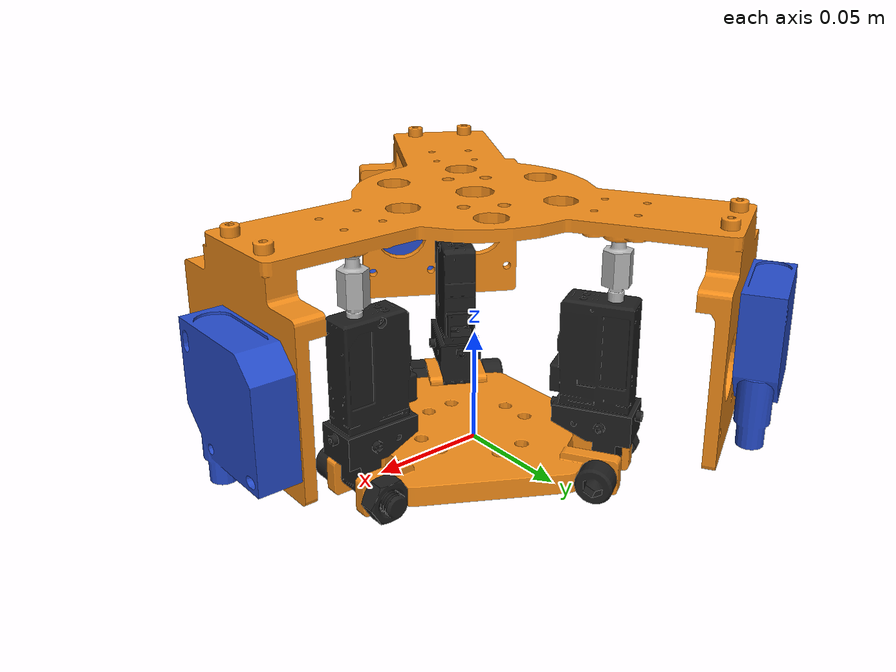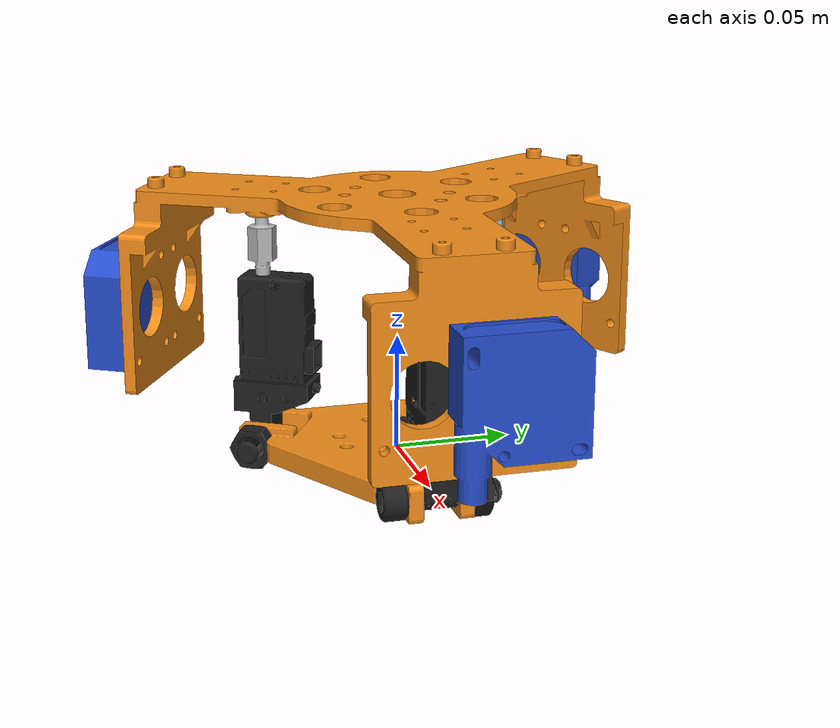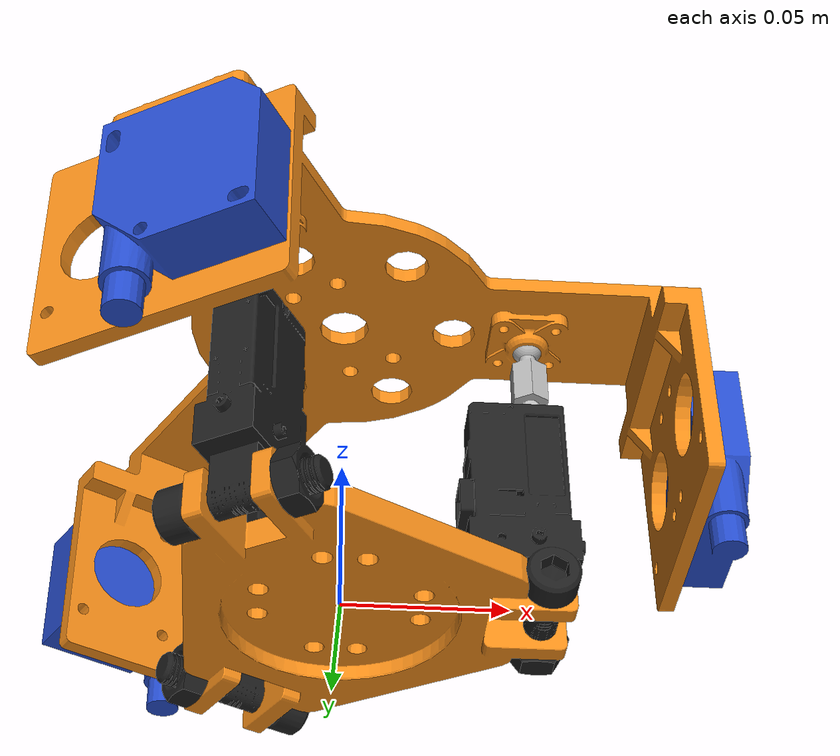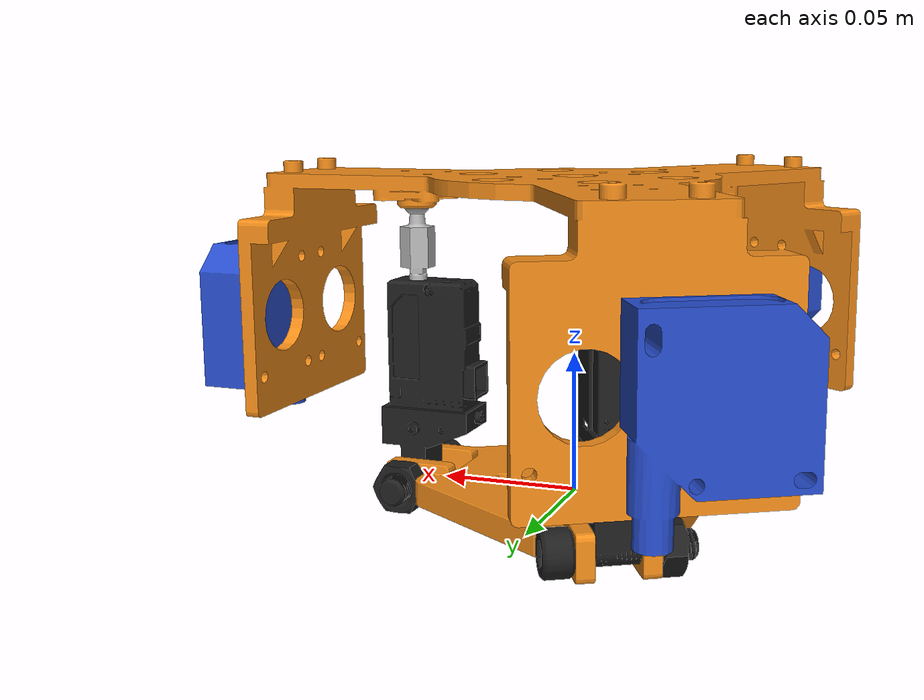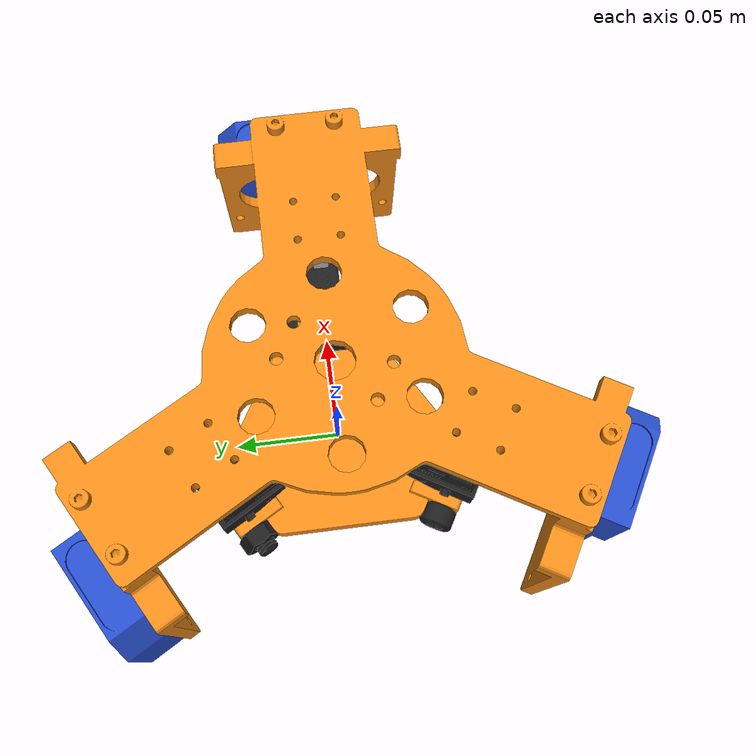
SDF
<?xml version='1.0'?>
<sdf version='1.6'>
  <model name='parabot'>
    <link name='lower_platform'>
      <pose frame=''>0 0 0 0 -0 0</pose>
      <inertial>
        <pose frame=''>-5e-5 -0 0.000128 0.006041 -0 0</pose>
        <mass>0.060560</mass>
        <inertia>
          <ixx>0.05470</ixx>
          <ixy>-1e-4</ixy>
          <ixz>0</ixz>
          <iyy>0.05468</iyy>
          <iyz>0</iyz>
          <izz>0.10820</izz>
        </inertia>
      </inertial>
      <collision name='lower_platform_collision'>
        <pose frame=''>0 0 0 0 -0 0</pose>
        <geometry>
          <mesh>
            <scale>1 1 1</scale>
            <uri>model://parabot/meshes/base_link.STL</uri>
          </mesh>
        </geometry>
        <max_contacts>10</max_contacts>
      </collision>
      <visual name='lower_platform_visual'>
        <pose frame=''>0 0 0 0 0 0</pose>
        <geometry>
          <mesh>
            <scale>1 1 1</scale>
            <uri>model://parabot/meshes/base_link.STL</uri>
          </mesh>
        </geometry>
        <material>
          <script>
            <name>Gazebo/Orange</name>
          </script>
        </material>
      </visual>
      <self_collide>0</self_collide>
      <enable_wind>0</enable_wind>
      <kinematic>0</kinematic>
    </link>

    <link name='motor_base1'>
      <pose frame=''>0.06 0 0 0 -0 0</pose>
      <inertial>
        <pose frame=''>-0.002209 0.000370 0.033496 0 -0 0</pose>
        <mass>0.023672</mass>
        <inertia>
          <ixx>0.01527</ixx>
          <ixy>-3e-4</ixy>
          <ixz>0.0000052</ixz>
          <iyy>0.01490</iyy>
          <iyz>0.0000032</iyz>
          <izz>0.00352</izz>
        </inertia>
      </inertial>
      <collision name='motor_base1_collision'>
        <pose frame=''>0 0 0 0 0 0</pose>
        <geometry>
          <mesh>
            <scale>1 1 1</scale>
            <uri>model://parabot/meshes/motor_base.STL</uri>
          </mesh>
        </geometry>
        <max_contacts>10</max_contacts>
      </collision>
      <visual name='motor_base1_visual'>
        <pose frame=''>0 0 0 0 -0 0</pose>
        <geometry>
          <mesh>
            <scale>1 1 1</scale>
            <uri>model://parabot/meshes/motor_base.STL</uri>
          </mesh>
        </geometry>
        <material>
          <script>
            <name>Gazebo/Black</name>
          </script>
        </material>
      </visual>
      <self_collide>0</self_collide>
      <enable_wind>0</enable_wind>
      <kinematic>0</kinematic>
    </link>
    <joint name='passive_joint1' type='revolute'>
      <child>motor_base1</child>
      <parent>lower_platform</parent>
      <axis>
        <xyz>0 1 0</xyz>
        <limit>
          <lower>-0.785</lower>
          <upper>0.785</upper>
          <effort>1000</effort>
          <velocity>10</velocity>
        </limit>
        <dynamics>
          <spring_reference>0</spring_reference>
          <spring_stiffness>0</spring_stiffness>
        </dynamics>
        <use_parent_model_frame>1</use_parent_model_frame>
      </axis>
    </joint>
    <link name='motor_link1'>
      <pose frame=''>0.06 0 0.0755 0 -0 0</pose>
      <inertial>
        <pose frame=''>0 0 0.006546 0 -0 0</pose>
        <mass>0.002678</mass>
        <inertia>
          <ixx>0.00068</ixx>
          <ixy>0</ixy>
          <ixz>0</ixz>
          <iyy>0.00068</iyy>
          <iyz>0</iyz>
          <izz>0.00004</izz>
        </inertia>
      </inertial>
      <collision name='motor_link1_collision'>
        <pose frame=''>0 0 0 0 -0 0</pose>
        <geometry>
          <mesh>
            <scale>1 1 1</scale>
            <uri>model://parabot/meshes/motor_link.STL</uri>
          </mesh>
        </geometry>
        <max_contacts>10</max_contacts>
      </collision>
      <visual name='motor_link1_visual'>
        <pose frame=''>0 0 0 0 -0 0</pose>
        <geometry>
          <mesh>
            <scale>1 1 1</scale>
            <uri>model://parabot/meshes/motor_link.STL</uri>
          </mesh>
        </geometry>
      </visual>
      <self_collide>0</self_collide>
      <enable_wind>0</enable_wind>
      <kinematic>0</kinematic>
    </link>
    <joint name='motor1' type='prismatic'>
      <child>motor_link1</child>
      <parent>motor_base1</parent>
      <axis>
        <xyz>0 0 1</xyz>
        <limit>
          <lower>0</lower>
          <upper>0.027</upper>
          <effort>1000</effort>
          <velocity>10</velocity>
        </limit>
        <dynamics>
          <damping>0.7</damping>
        </dynamics>
        <use_parent_model_frame>1</use_parent_model_frame>
      </axis>
    </joint>
    <link name='motor_base2'>
      <pose frame=''>-0.03 0.05196 0 0 -0 2.0944</pose>
      <inertial>
        <pose frame=''>-0.002209 0.000370 0.033496 0 -0 0</pose>
        <mass>0.023672</mass>
        <inertia>
          <ixx>0.01527</ixx>
          <ixy>-3e-4</ixy>
          <ixz>0.0000052</ixz>
          <iyy>0.01490</iyy>
          <iyz>0.0000032</iyz>
          <izz>0.00352</izz>
        </inertia>
      </inertial>
      <collision name='motor_base2_collision'>
        <pose frame=''>0 0 0 0 -0 0</pose>
        <geometry>
          <mesh>
            <scale>1 1 1</scale>
            <uri>model://parabot/meshes/motor_base.STL</uri>
          </mesh>
        </geometry>
        <max_contacts>10</max_contacts>
      </collision>
      <visual name='motor_base2_visual'>
        <pose frame=''>0 0 0 0 -0 0</pose>
        <geometry>
          <mesh>
            <scale>1 1 1</scale>
            <uri>model://parabot/meshes/motor_base.STL</uri>
          </mesh>
        </geometry>
        <material>
          <script>
            <name>Gazebo/Black</name>
          </script>
        </material>
      </visual>
      <self_collide>0</self_collide>
      <enable_wind>0</enable_wind>
      <kinematic>0</kinematic>
    </link>
    <joint name='passive_joint2' type='revolute'>
      <child>motor_base2</child>
      <parent>lower_platform</parent>
      <axis>
        <xyz>-0.866025 -0.5 0</xyz>
        <limit>
          <lower>-0.785</lower>
          <upper>0.785</upper>
          <effort>1000</effort>
          <velocity>10</velocity>
        </limit>
        <dynamics>
          <spring_reference>0</spring_reference>
          <spring_stiffness>0</spring_stiffness>
        </dynamics>
        <use_parent_model_frame>1</use_parent_model_frame>
      </axis>
    </joint>
    <link name='motor_link2'>
      <pose frame=''>-0.03 0.05196 0.0775 0 -0 2.0944</pose>
      <inertial>
        <pose frame=''>0 0 0.006546 0 -0 0</pose>
        <mass>0.002678</mass>
        <inertia>
          <ixx>0.00068</ixx>
          <ixy>0</ixy>
          <ixz>0</ixz>
          <iyy>0.00068</iyy>
          <iyz>0</iyz>
          <izz>0.00004</izz>
        </inertia>
      </inertial>
      <collision name='motor_link2_collision'>
        <pose frame=''>0 0 0 0 -0 0</pose>
        <geometry>
          <mesh>
            <scale>1 1 1</scale>
            <uri>model://parabot/meshes/motor_link.STL</uri>
          </mesh>
        </geometry>
        <max_contacts>10</max_contacts>
      </collision>
      <visual name='motor_link2_visual'>
        <pose frame=''>0 0 0 0 -0 0</pose>
        <geometry>
          <mesh>
            <scale>1 1 1</scale>
            <uri>model://parabot/meshes/motor_link.STL</uri>
          </mesh>
        </geometry>
      </visual>
      <self_collide>0</self_collide>
      <enable_wind>0</enable_wind>
      <kinematic>0</kinematic>
    </link>
    <joint name='motor2' type='prismatic'>
      <child>motor_link2</child>
      <parent>motor_base2</parent>
      <axis>
        <xyz>0 0 1</xyz>
        <limit>
          <lower>0</lower>
          <upper>0.027</upper>
          <effort>100</effort>
          <velocity>10</velocity>
        </limit>
        <dynamics>
          <damping>0.7</damping>
        </dynamics>
        <use_parent_model_frame>1</use_parent_model_frame>
      </axis>
    </joint>
    <link name='motor_base3'>
      <pose frame=''>-0.03 -0.05196 0 0 -0 -2.0944</pose>
      <inertial>
        <pose frame=''>-0.002209 0.000370 0.033496 0 -0 0</pose>
        <mass>0.023672</mass>
        <inertia>
          <ixx>0.01527</ixx>
          <ixy>-3e-4</ixy>
          <ixz>0.000052</ixz>
          <iyy>0.01490</iyy>
          <iyz>0.000032</iyz>
          <izz>0.00352</izz>
        </inertia>
      </inertial>
      <collision name='motor_base3_collision'>
        <pose frame=''>0 0 0 0 -0 0</pose>
        <geometry>
          <mesh>
            <scale>1 1 1</scale>
            <uri>model://parabot/meshes/motor_base.STL</uri>
          </mesh>
        </geometry>
        <max_contacts>10</max_contacts>
      </collision>
      <visual name='motor_base3_visual'>
        <pose frame=''>0 0 0 0 -0 0</pose>
        <geometry>
          <mesh>
            <scale>1 1 1</scale>
            <uri>model://parabot/meshes/motor_base.STL</uri>
          </mesh>
        </geometry>
        <material>
          <script>
            <name>Gazebo/Black</name>
          </script>
        </material>
      </visual>
      <self_collide>0</self_collide>
      <enable_wind>0</enable_wind>
      <kinematic>0</kinematic>
    </link>
    <joint name='passive_joint3' type='revolute'>
      <child>motor_base3</child>
      <parent>lower_platform</parent>
      <axis>
        <xyz>-0.866025 0.5 0</xyz>
        <limit>
          <lower>-0.785</lower>
          <upper>0.785</upper>
          <effort>1000</effort>
          <velocity>10</velocity>
        </limit>
        <dynamics>
          <spring_reference>0</spring_reference>
          <spring_stiffness>0</spring_stiffness>
        </dynamics>
        <use_parent_model_frame>1</use_parent_model_frame>
      </axis>
    </joint>
    <link name='motor_link3'>
      <pose frame=''>-0.03 -0.05196 0.0775 0 -0 -2.0944</pose>
      <inertial>
        <pose frame=''>0 0 0.006546 0 -0 0</pose>
        <mass>0.002678</mass>
        <inertia>
          <ixx>0.00068</ixx>
          <ixy>0</ixy>
          <ixz>0</ixz>
          <iyy>0.00068</iyy>
          <iyz>0</iyz>
          <izz>0.00004</izz>
        </inertia>
      </inertial>
      <collision name='motor_link3_collision'>
        <pose frame=''>0 0 0 0 -0 0</pose>
        <geometry>
          <mesh>
            <scale>1 1 1</scale>
            <uri>model://parabot/meshes/motor_link.STL</uri>
          </mesh>
        </geometry>
        <max_contacts>10</max_contacts>
      </collision>
      <visual name='motor_link3_visual'>
        <pose frame=''>0 0 0 0 -0 0</pose>
        <geometry>
          <mesh>
            <scale>1 1 1</scale>
            <uri>model://parabot/meshes/motor_link.STL</uri>
          </mesh>
        </geometry>
      </visual>
      <self_collide>0</self_collide>
      <enable_wind>0</enable_wind>
      <kinematic>0</kinematic>
    </link>
    <joint name='motor3' type='prismatic'>
      <child>motor_link3</child>
      <parent>motor_base3</parent>
      <axis>
        <xyz>0 0 1</xyz>
        <limit>
          <lower>0</lower>
          <upper>0.027</upper>
          <effort>100</effort>
          <velocity>10</velocity>
        </limit>
        <dynamics>
          <damping>0.7</damping>
        </dynamics>
        <use_parent_model_frame>1</use_parent_model_frame>
      </axis>
    </joint>

    <link name='upper_platform'>
      <pose frame=''>0.06 0 0.1015 0 -0 0</pose>
      <inertial>
        <pose>-0.06 0 -0.011912</pose>
        <mass>0.00178</mass>
        <inertia>
          <ixx>0.00085383</ixx>
          <ixy>0.000006</ixy>
          <ixz>0</ixz>
          <iyy>0.00085391</iyy>
          <iyz>0</iyz>
          <izz>0.00147406</izz>
        </inertia>
      </inertial>
      <collision name='upper_platform_collision'>
        <pose frame=''>0 0 0 0 -0 0</pose>
        <geometry>
          <mesh>
            <scale>1 1 1</scale>
            <uri>model://parabot/meshes/upper_platform.STL</uri>
          </mesh>
        </geometry>
        <max_contacts>10</max_contacts>
      </collision>
      <visual name='upper_platform_visual'>
        <pose frame=''>0 0 0 0 0 0</pose>
        <geometry>
          <mesh>
            <scale>1 1 1</scale>
            <uri>model://parabot/meshes/upper_platform.STL</uri>
          </mesh>
        </geometry>
        <material>
          <script>
            <name>Gazebo/Orange</name>
          </script>
        </material>
      </visual>

      <!-- laser sensor 1 -->
      <collision name='upper_platform_fixed_joint_lump__laser1_collision_1'>
        <pose frame=''>0.0575 0 -0.0145 0 -0 0</pose>
        <geometry>
          <mesh>
            <scale>1 1 1</scale>
            <uri>model://parabot/meshes/laser.STL</uri>
          </mesh>
        </geometry>
        <max_contacts>10</max_contacts>
      </collision>
      <visual name='upper_platform_fixed_joint_lump__sensor1_visual_1'>
        <pose frame=''>0.0575 0 -0.0145 0 -0 0</pose>
        <geometry>
          <mesh>
            <scale>1 1 1</scale>
            <uri>model://parabot/meshes/laser.STL</uri>
          </mesh>
        </geometry>
        <material>
          <script>
            <name>Gazebo/Blue</name>
          </script>
        </material>
      </visual>

      <sensor name="laser1" type="ray">
        <pose frame=''>0.0575 0 -0.0145 0 -1.5707963268 0</pose>
        <visualize>true</visualize>
        <update_rate>125</update_rate>
        <ray>
          <scan>
            <horizontal>
              <samples>1</samples>
              <resolution>1</resolution>
              <min_angle>-0.000</min_angle>
              <max_angle>0.000</max_angle>
            </horizontal>
          </scan>
          <range>
            <min>0.08</min>
            <max>0.3</max>
            <resolution>0.01</resolution>
          </range>
          <noise>
            <type>gaussian</type>
            <mean>0.0</mean>
            <stddev>0.0001</stddev>
          </noise>
        </ray>
        <plugin name="gazebo_ros_laser_controller1" filename="libgazebo_ros_laser.so">
          <topicName>parabot/laser1</topicName>
          <frameName>upper_platform</frameName>
        </plugin>
      </sensor>

      <!-- laser sensor 2 -->
      <collision name='upper_platform_fixed_joint_lump__laser2_collision_2'>
        <pose frame=''>-0.11875 0.10176 -0.0145 0 -0 2.0944</pose>
        <geometry>
          <mesh>
            <scale>1 1 1</scale>
            <uri>model://parabot/meshes/laser.STL</uri>
          </mesh>
        </geometry>
        <max_contacts>10</max_contacts>
      </collision>
      <visual name='upper_platform_fixed_joint_lump__laser2_visual_2'>
        <pose frame=''>-0.11875 0.10176 -0.0145 0 -0 2.0944</pose>
        <geometry>
          <mesh>
            <scale>1 1 1</scale>
            <uri>model://parabot/meshes/laser.STL</uri>
          </mesh>
        </geometry>
        <material>
          <script>
            <name>Gazebo/Blue</name>
          </script>
        </material>
      </visual>

      <sensor name="laser2" type="ray">
        <pose frame=''>-0.11875 0.10176 -0.0145 0 -1.5707963268 2.0944</pose>
        <visualize>true</visualize>
        <update_rate>125</update_rate>
        <ray>
          <scan>
            <horizontal>
              <samples>1</samples>
              <resolution>1</resolution>
              <min_angle>-0.000</min_angle>
              <max_angle>0.000</max_angle>
            </horizontal>
          </scan>
          <range>
            <min>0.08</min>
            <max>0.3</max>
            <resolution>0.01</resolution>
          </range>
          <noise>
            <type>gaussian</type>
            <mean>0.0</mean>
            <stddev>0.0001</stddev>
          </noise>
        </ray>
        <plugin name="gazebo_ros_laser_controller2" filename="libgazebo_ros_laser.so">
          <topicName>parabot/laser2</topicName>
          <frameName>upper_platform</frameName>
        </plugin>
      </sensor>

      <!-- laser sensor 3 -->
      <collision name='upper_platform_fixed_joint_lump__laser3_collision_3'>
        <pose frame=''>-0.11875 -0.10176 -0.0145 0 0 -2.0944</pose>
        <geometry>
          <mesh>
            <scale>1 1 1</scale>
            <uri>model://parabot/meshes/laser.STL</uri>
          </mesh>
        </geometry>
        <max_contacts>10</max_contacts>
      </collision>
      <visual name='upper_platform_fixed_joint_lump__sensor3_visual_3'>
        <pose frame=''>-0.11875 -0.10176 -0.0145 0 0 -2.0944</pose>
        <geometry>
          <mesh>
            <scale>1 1 1</scale>
            <uri>model://parabot/meshes/laser.STL</uri>
          </mesh>
        </geometry>
        <material>
          <script>
            <name>Gazebo/Blue</name>
          </script>
        </material>
      </visual>

      <sensor name="laser3" type="ray">
        <pose frame=''>-0.11875 -0.10176 -0.0145 0 -1.5707963268 -2.0944</pose>
        <visualize>true</visualize>
        <update_rate>125</update_rate>
        <ray>
          <scan>
            <horizontal>
              <samples>1</samples>
              <resolution>1</resolution>
              <min_angle>-0.000</min_angle>
              <max_angle>0.000</max_angle>
            </horizontal>
          </scan>
          <range>
            <min>0.08</min>
            <max>0.3</max>
            <resolution>0.01</resolution>
          </range>
          <noise>
            <type>gaussian</type>
            <mean>0.0</mean>
            <stddev>0.0001</stddev>
          </noise>
        </ray>
        <plugin name="gazebo_ros_laser_controller3" filename="libgazebo_ros_laser.so">
          <topicName>parabot/laser3</topicName>
          <frameName>upper_platform</frameName>
        </plugin>
      </sensor>

    </link>

    <joint name='ball1' type='ball'>
      <pose>0 0 0 0 0 0 </pose>
      <child>upper_platform</child>
      <parent>motor_link1</parent>
    </joint>

    <joint name='ball2' type='ball'>
      <pose>-0.09 0.05196 0 0 0 0</pose>
      <child>upper_platform</child>
      <parent>motor_link2</parent>
    </joint>

    <joint name='ball3' type='ball'>
      <pose>-0.09 -0.05196 0 0 0 0</pose>
      <child>upper_platform</child>
      <parent>motor_link3</parent>
    </joint>

    <plugin name="parabot_hw_sim_plugin" filename="libparabot_plugin.so">
      <robotNamespace>parabot</robotNamespace>
      <jointName>poineer::parabot::motor1 poineer::parabot::motor2 poineer::parabot::motor3</jointName>
    </plugin>

  </model>

</sdf>
